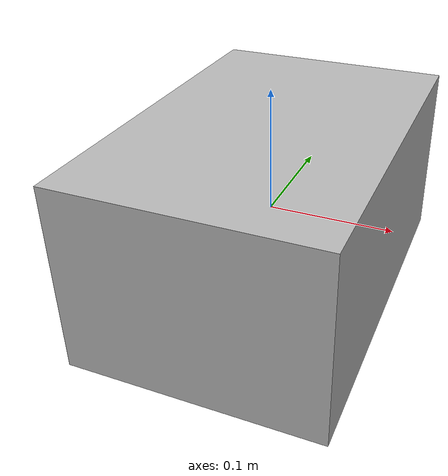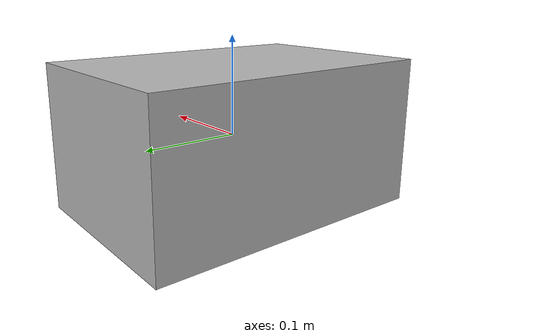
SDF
<?xml version="1.0"?>
<sdf version="1.6">
  <model name="sema_middle_box">
    <link name="sema_middle_box_link">
      <visual name="sema_middle_box_visual">
        <pose>0 0 0 0 0 0</pose>
        <geometry>
          <mesh>
            <uri>model://sema_middle_box/mesh/sema_middle_box.dae</uri>
          </mesh>
        </geometry>
        <origin xyz="0 0 0" rpy="0 0 0"/>
      </visual>
      <collision name="sema_middle_box_collision">
        <geometry>
          <box>
            <size>0.2 0.3 0.15</size>
          </box>
        </geometry>
        <surface>
          <friction>
            <ode>
              <mu>100.0</mu>
              <mu2>100.0</mu2>
            </ode>
          </friction>
        </surface>
      </collision>
      <inertial>
        <mass>2.08</mass>
        <inertia>
          <ixx>0.01953</ixx>
          <iyy>0.01085</iyy>
          <izz>0.02257</izz>
          <ixy>0</ixy>
          <ixz>0</ixz>
          <iyz>0</iyz>
        </inertia>
      </inertial>
    </link>
  </model>
</sdf>
